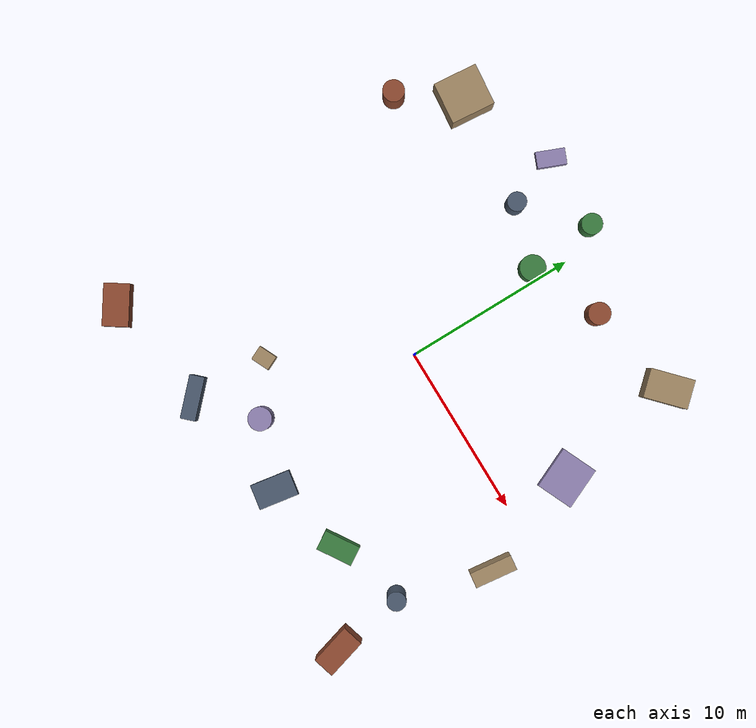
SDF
<sdf version="1.10">
 <world name="robotx_task1_uav_view">
  <gravity>0 0 -9.81</gravity>
  <physics name="physics" type="ode">
   <max_step_size>0.002</max_step_size>
   <real_time_factor>1.0</real_time_factor>
  </physics>
  <scene>
   <ambient>0.20 0.20 0.20 1.0</ambient>
   <background>0.58 0.70 0.88 1.0</background>
   <shadows>true</shadows>
   <grid>false</grid>
  </scene>
  <light name="sun" type="directional">
   <pose>0 0 300 0 0 0</pose>
   <diffuse>0.78 0.78 0.78 1.0</diffuse>
   <specular>0.45 0.45 0.45 1.0</specular>
   <direction>0.20 -0.08 -1.0</direction>
   <attenuation>
    <range>2500</range>
    <constant>0.85</constant>
    <linear>0.001</linear>
    <quadratic>0.00005</quadratic>
   </attenuation>
  </light>
  <plugin filename="gz-sim-physics-system" name="gz::sim::systems::Physics"/>
  <plugin filename="gz-sim-user-commands-system" name="gz::sim::systems::UserCommands"/>
  <plugin filename="gz-sim-scene-broadcaster-system" name="gz::sim::systems::SceneBroadcaster"/>
  <plugin filename="gz-sim-sensors-system" name="gz::sim::systems::Sensors">
   <render_engine>ogre2</render_engine>
  </plugin>
  <model name="scene_clutter_box_000">
   <static>true</static>
   <pose>8.977 11.057 0.751 0 0 2.321398</pose>
   <link name="link">
    <visual name="v">
     <geometry><box><size>1.675 2.547 1.462</size></box></geometry>
     <material><ambient>0.45 0.38 0.32 1.0</ambient><diffuse>0.62 0.52 0.38 1.0</diffuse></material>
    </visual>
   </link>
  </model>
  <model name="scene_clutter_box_001">
   <static>true</static>
   <pose>2.392 -10.620 0.316 0 0 1.408356</pose>
   <link name="link">
    <visual name="v">
     <geometry><box><size>2.319 1.462 0.592</size></box></geometry>
     <material><ambient>0.18 0.22 0.28 1.0</ambient><diffuse>0.28 0.34 0.42 1.0</diffuse></material>
    </visual>
   </link>
  </model>
  <model name="scene_clutter_box_002">
   <static>true</static>
   <pose>11.835 -12.157 0.799 0 0 -1.290232</pose>
   <link name="link">
    <visual name="v">
     <geometry><box><size>2.418 1.271 1.558</size></box></geometry>
     <material><ambient>0.35 0.16 0.12 1.0</ambient><diffuse>0.55 0.28 0.18 1.0</diffuse></material>
    </visual>
   </link>
  </model>
  <model name="scene_clutter_box_003">
   <static>true</static>
   <pose>6.995 -9.222 0.528 0 0 2.136288</pose>
   <link name="link">
    <visual name="v">
     <geometry><box><size>1.149 2.126 1.016</size></box></geometry>
     <material><ambient>0.12 0.30 0.14 1.0</ambient><diffuse>0.22 0.48 0.24 1.0</diffuse></material>
    </visual>
   </link>
  </model>
  <model name="scene_clutter_box_004">
   <static>true</static>
   <pose>-5.392 12.308 0.263 0 0 -1.957376</pose>
   <link name="link">
    <visual name="v">
     <geometry><box><size>1.673 0.929 0.487</size></box></geometry>
     <material><ambient>0.40 0.35 0.50 1.0</ambient><diffuse>0.55 0.50 0.68 1.0</diffuse></material>
    </visual>
   </link>
  </model>
  <model name="scene_clutter_box_005">
   <static>true</static>
   <pose>-10.810 9.819 0.966 0 0 -0.094091</pose>
   <link name="link">
    <visual name="v">
     <geometry><box><size>2.392 2.541 1.893</size></box></geometry>
     <material><ambient>0.45 0.38 0.32 1.0</ambient><diffuse>0.62 0.52 0.38 1.0</diffuse></material>
    </visual>
   </link>
  </model>
  <model name="scene_clutter_box_006">
   <static>true</static>
   <pose>-4.371 -11.761 0.613 0 0 0.806921</pose>
   <link name="link">
    <visual name="v">
     <geometry><box><size>0.857 2.500 1.186</size></box></geometry>
     <material><ambient>0.18 0.22 0.28 1.0</ambient><diffuse>0.28 0.34 0.42 1.0</diffuse></material>
    </visual>
   </link>
  </model>
  <model name="scene_clutter_cyl_007">
   <static>true</static>
   <pose>-12.931 6.569 1.089 0 0 -1.246943</pose>
   <link name="link">
    <visual name="v">
     <geometry><cylinder><radius>0.618</radius><length>2.079</length></cylinder></geometry>
     <material><ambient>0.35 0.16 0.12 1.0</ambient><diffuse>0.55 0.28 0.18 1.0</diffuse></material>
    </visual>
   </link>
  </model>
  <model name="scene_clutter_cyl_008">
   <static>true</static>
   <pose>-1.032 12.159 0.804 0 0 0.176501</pose>
   <link name="link">
    <visual name="v">
     <geometry><cylinder><radius>0.601</radius><length>1.507</length></cylinder></geometry>
     <material><ambient>0.12 0.30 0.14 1.0</ambient><diffuse>0.22 0.48 0.24 1.0</diffuse></material>
    </visual>
   </link>
  </model>
  <model name="scene_clutter_cyl_009">
   <static>true</static>
   <pose>-1.407 -9.124 0.871 0 0 -1.108761</pose>
   <link name="link">
    <visual name="v">
     <geometry><cylinder><radius>0.677</radius><length>1.642</length></cylinder></geometry>
     <material><ambient>0.40 0.35 0.50 1.0</ambient><diffuse>0.55 0.50 0.68 1.0</diffuse></material>
    </visual>
   </link>
  </model>
  <model name="scene_clutter_box_010">
   <static>true</static>
   <pose>-4.209 -7.244 0.433 0 0 0.437095</pose>
   <link name="link">
    <visual name="v">
     <geometry><box><size>1.096 0.858 0.826</size></box></geometry>
     <material><ambient>0.45 0.38 0.32 1.0</ambient><diffuse>0.62 0.52 0.38 1.0</diffuse></material>
    </visual>
   </link>
  </model>
  <model name="scene_clutter_cyl_011">
   <static>true</static>
   <pose>-4.226 9.211 0.978 0 0 -2.888006</pose>
   <link name="link">
    <visual name="v">
     <geometry><cylinder><radius>0.550</radius><length>1.856</length></cylinder></geometry>
     <material><ambient>0.18 0.22 0.28 1.0</ambient><diffuse>0.28 0.34 0.42 1.0</diffuse></material>
    </visual>
   </link>
  </model>
  <model name="scene_clutter_box_012">
   <static>true</static>
   <pose>-11.007 -12.704 0.552 0 0 -0.589821</pose>
   <link name="link">
    <visual name="v">
     <geometry><box><size>2.420 1.484 1.064</size></box></geometry>
     <material><ambient>0.35 0.16 0.12 1.0</ambient><diffuse>0.55 0.28 0.18 1.0</diffuse></material>
    </visual>
   </link>
  </model>
  <model name="scene_clutter_cyl_013">
   <static>true</static>
   <pose>-0.666 8.128 0.678 0 0 0.935009</pose>
   <link name="link">
    <visual name="v">
     <geometry><cylinder><radius>0.741</radius><length>1.255</length></cylinder></geometry>
     <material><ambient>0.12 0.30 0.14 1.0</ambient><diffuse>0.22 0.48 0.24 1.0</diffuse></material>
    </visual>
   </link>
  </model>
  <model name="scene_clutter_box_014">
   <static>true</static>
   <pose>10.365 3.702 0.328 0 0 -1.148771</pose>
   <link name="link">
    <visual name="v">
     <geometry><box><size>2.504 2.186 0.617</size></box></geometry>
     <material><ambient>0.40 0.35 0.50 1.0</ambient><diffuse>0.55 0.50 0.68 1.0</diffuse></material>
    </visual>
   </link>
  </model>
  <model name="scene_clutter_box_015">
   <static>true</static>
   <pose>12.524 -2.521 0.801 0 0 -0.120123</pose>
   <link name="link">
    <visual name="v">
     <geometry><box><size>0.873 2.470 1.561</size></box></geometry>
     <material><ambient>0.45 0.38 0.32 1.0</ambient><diffuse>0.62 0.52 0.38 1.0</diffuse></material>
    </visual>
   </link>
  </model>
  <model name="scene_clutter_cyl_016">
   <static>true</static>
   <pose>11.015 -7.879 1.245 0 0 2.906406</pose>
   <link name="link">
    <visual name="v">
     <geometry><cylinder><radius>0.542</radius><length>2.390</length></cylinder></geometry>
     <material><ambient>0.18 0.22 0.28 1.0</ambient><diffuse>0.28 0.34 0.42 1.0</diffuse></material>
    </visual>
   </link>
  </model>
  <model name="scene_clutter_cyl_017">
   <static>true</static>
   <pose>3.410 9.902 0.880 0 0 2.469385</pose>
   <link name="link">
    <visual name="v">
     <geometry><cylinder><radius>0.641</radius><length>1.661</length></cylinder></geometry>
     <material><ambient>0.35 0.16 0.12 1.0</ambient><diffuse>0.55 0.28 0.18 1.0</diffuse></material>
    </visual>
   </link>
  </model>
  <model name="uav_dataset_camera">
   <static>false</static>
   <pose>0 0 26 0 0 0</pose>
   <plugin filename="librobotx_overhead_motion_plugin.dylib" name="robotx::OverheadMotionPlugin">
    <radius_x_m>11.39581</radius_x_m>
    <radius_y_m>6.68256</radius_y_m>
    <angular_speed_rad_s>0.040678</angular_speed_rad_s>
    <phase_rad>1.818988</phase_rad>
    <z_wobble_m>0.06214</z_wobble_m>
    <z_wobble_hz>0.03126</z_wobble_hz>
    <z_wobble_phase_rad>3.294352</z_wobble_phase_rad>
   </plugin>
   <link name="camera_link">
    <gravity>false</gravity>
    <sensor name="top_down_rgb" type="camera">
     <always_on>true</always_on>
     <update_rate>20</update_rate>
     <pose>0 0 0 0 1.57079632679 0</pose>
     <camera>
      <horizontal_fov>1.05</horizontal_fov>
      <image><width>1920</width><height>1080</height><format>R8G8B8</format></image>
      <clip><near>0.2</near><far>600</far></clip>
     </camera>
     <topic>/robotx/uav/camera/image_raw</topic>
     <visualize>true</visualize>
    </sensor>
   </link>
  </model>
 </world>
</sdf>
